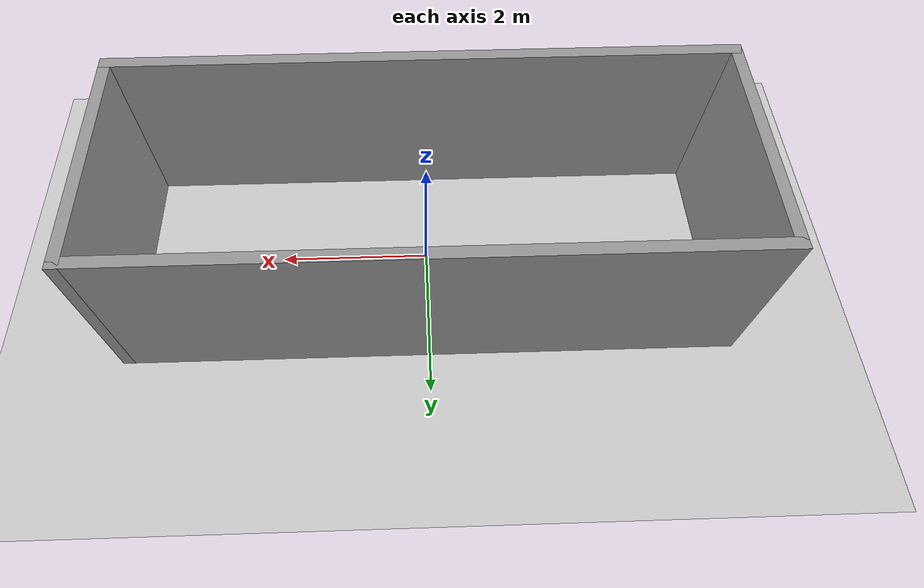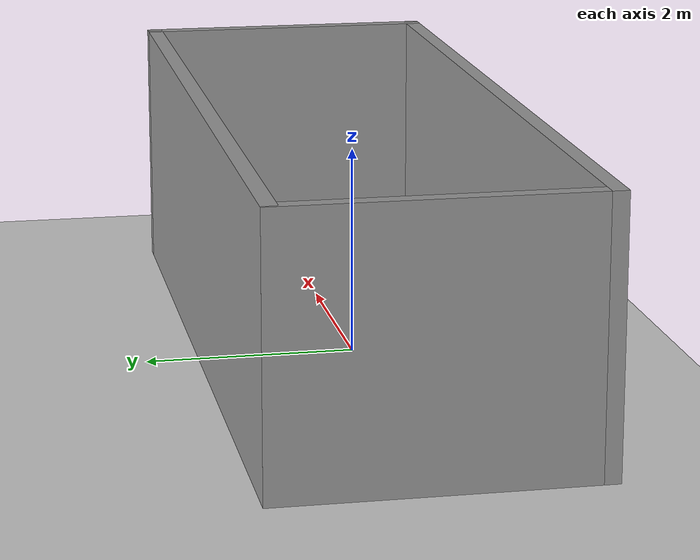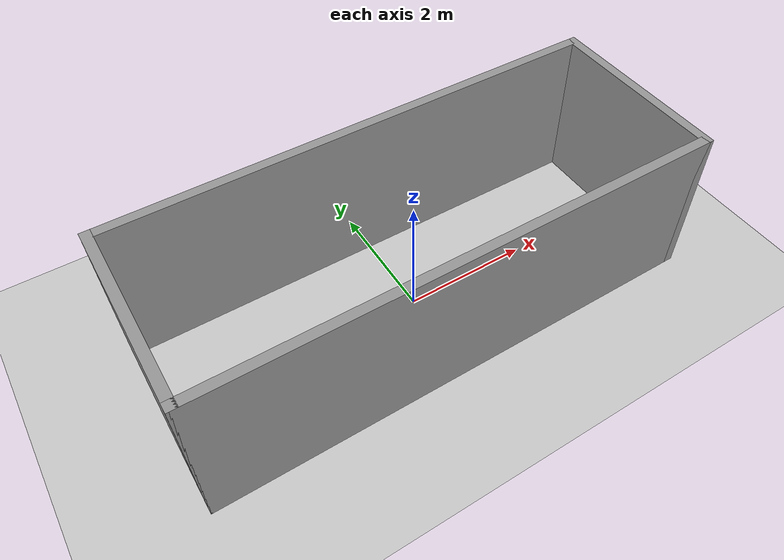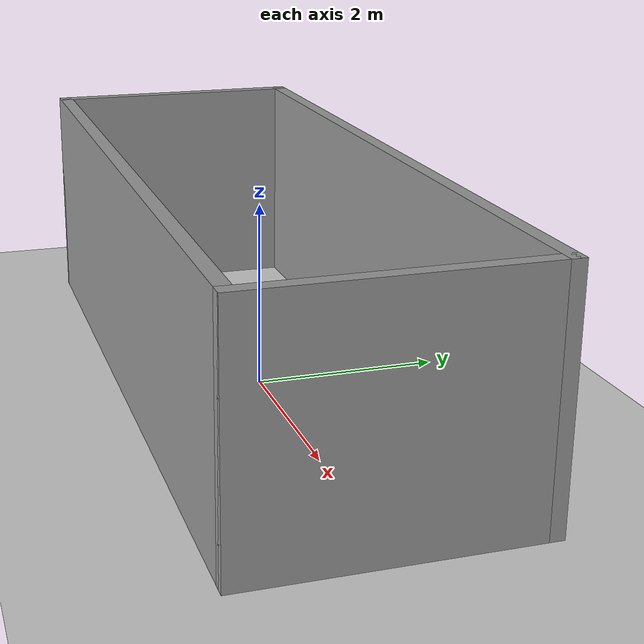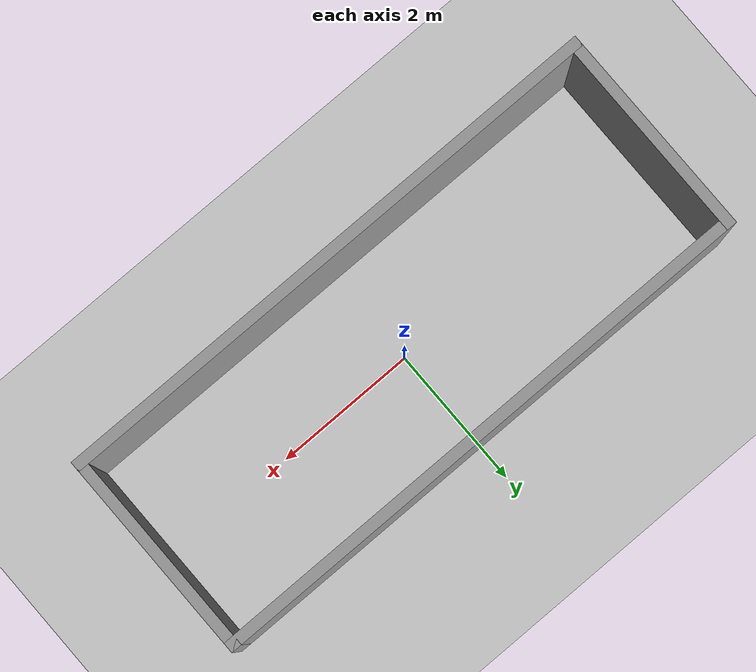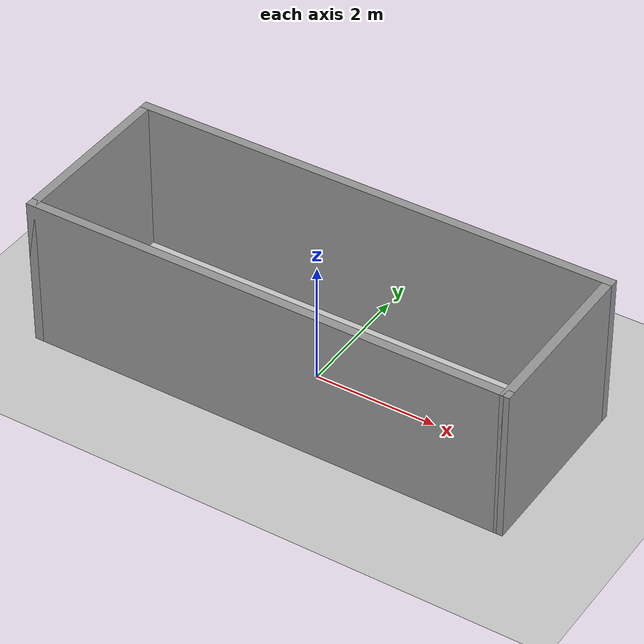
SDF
<?xml version="1.0" ?>
<sdf version="1.6">
  <world name="pasillo_test">

    <include><uri>model://sun</uri></include>
    <include><uri>model://ground_plane</uri></include>

    <include>
      <uri>model://pasillo_usta</uri>
      <pose>0 0 0 0 0 0</pose>
    </include>

    <physics type="ode">
      <max_step_size>0.001</max_step_size>
      <real_time_update_rate>1000</real_time_update_rate>
    </physics>

  </world>
</sdf>

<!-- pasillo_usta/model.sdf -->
<sdf version='1.7'>
  <model name='pasillo_usta'>
    <pose>-0.335 0.225 0 0 -0 0</pose>
    <link name='Wall_1'>
      <collision name='Wall_1_Collision'>
        <geometry>
          <box>
            <size>8 0.15 2.5</size>
          </box>
        </geometry>
        <pose>0 0 1.25 0 -0 0</pose>
      </collision>
      <visual name='Wall_1_Visual'>
        <pose>0 0 1.25 0 -0 0</pose>
        <geometry>
          <box>
            <size>8 0.15 2.5</size>
          </box>
        </geometry>
        <material>
          <script>
            <uri>file://media/materials/scripts/gazebo.material</uri>
            <name>Gazebo/Grey</name>
          </script>
          <ambient>1 1 1 1</ambient>
        </material>
        <meta>
          <layer>0</layer>
        </meta>
      </visual>
      <pose>0 -1.425 0 0 -0 0</pose>
    </link>
    <link name='Wall_2'>
      <collision name='Wall_2_Collision'>
        <geometry>
          <box>
            <size>3 0.15 2.5</size>
          </box>
        </geometry>
        <pose>0 0 1.25 0 -0 0</pose>
      </collision>
      <visual name='Wall_2_Visual'>
        <pose>0 0 1.25 0 -0 0</pose>
        <geometry>
          <box>
            <size>3 0.15 2.5</size>
          </box>
        </geometry>
        <material>
          <script>
            <uri>file://media/materials/scripts/gazebo.material</uri>
            <name>Gazebo/Grey</name>
          </script>
          <ambient>1 1 1 1</ambient>
        </material>
        <meta>
          <layer>0</layer>
        </meta>
      </visual>
      <pose>3.925 -0 0 0 -0 1.5708</pose>
    </link>
    <link name='Wall_3'>
      <collision name='Wall_3_Collision'>
        <geometry>
          <box>
            <size>8 0.15 2.5</size>
          </box>
        </geometry>
        <pose>0 0 1.25 0 -0 0</pose>
      </collision>
      <visual name='Wall_3_Visual'>
        <pose>0 0 1.25 0 -0 0</pose>
        <geometry>
          <box>
            <size>8 0.15 2.5</size>
          </box>
        </geometry>
        <material>
          <script>
            <uri>file://media/materials/scripts/gazebo.material</uri>
            <name>Gazebo/Grey</name>
          </script>
          <ambient>1 1 1 1</ambient>
        </material>
        <meta>
          <layer>0</layer>
        </meta>
      </visual>
      <pose>0 1.425 0 0 -0 3.14159</pose>
    </link>
    <link name='Wall_5'>
      <collision name='Wall_5_Collision'>
        <geometry>
          <box>
            <size>3 0.15 2.5</size>
          </box>
        </geometry>
        <pose>0 0 1.25 0 -0 0</pose>
      </collision>
      <visual name='Wall_5_Visual'>
        <pose>0 0 1.25 0 -0 0</pose>
        <geometry>
          <box>
            <size>3 0.15 2.5</size>
          </box>
        </geometry>
        <material>
          <script>
            <uri>file://media/materials/scripts/gazebo.material</uri>
            <name>Gazebo/Grey</name>
          </script>
          <ambient>1 1 1 1</ambient>
        </material>
        <meta>
          <layer>0</layer>
        </meta>
      </visual>
      <pose>-3.925 -0 0 0 -0 1.5708</pose>
    </link>
    <static>1</static>
  </model>
</sdf>
